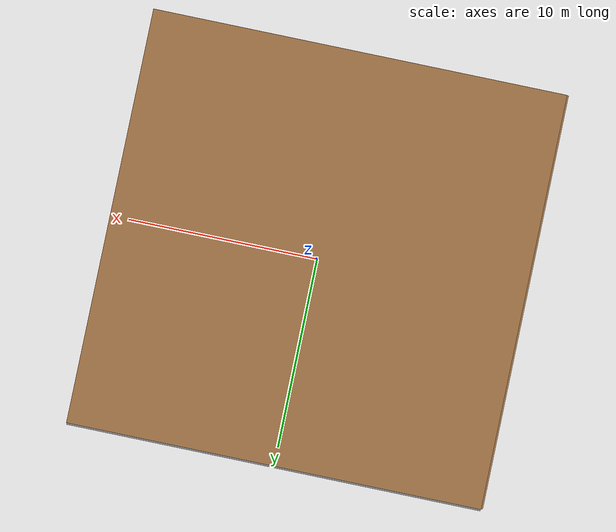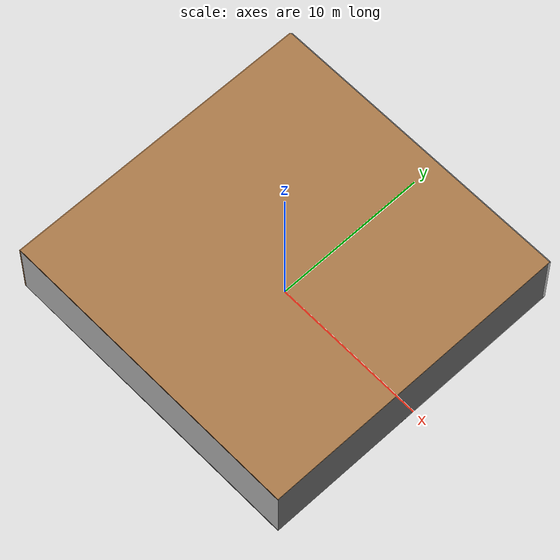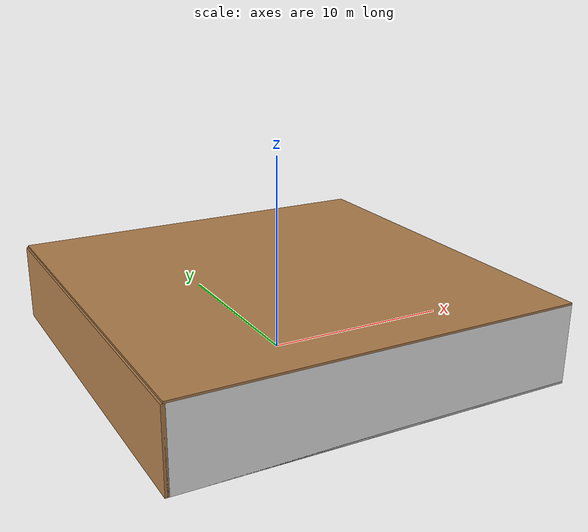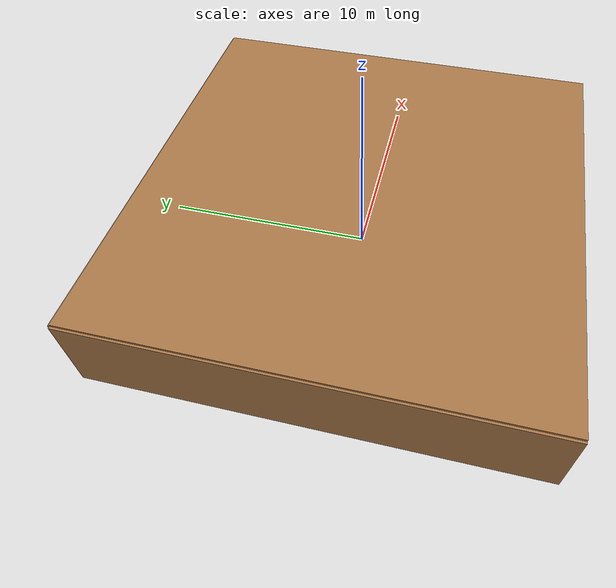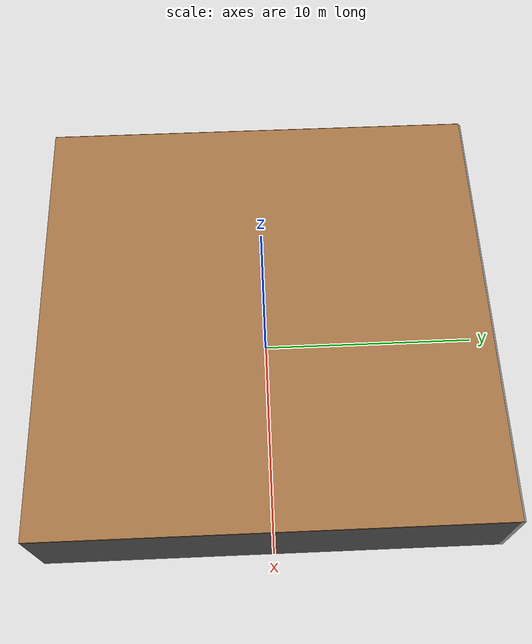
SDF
<sdf version="1.4">
 <world name="default">
  <physics type="ode">
   <max_step_size>0.001</max_step_size>
   <real_time_factor>1</real_time_factor>
   <real_time_update_rate>1000</real_time_update_rate>
   <gravity>0 0 -9.8</gravity>
  </physics>
  <scene><ambient>0.4 0.4 0.4 1</ambient><background>0.7 0.7 0.7 1</background><shadows>1</shadows></scene>
  <model name="Surrounding">
   <static>1</static>
   <link name="Ceiling">
    <collision name="Ceiling_Collision"><geometry><box><size>20 20 0.1</size></box></geometry></collision>
    <visual name="Ceiling_Visual">
     <geometry><box><size>20 20 0.1</size></box></geometry>
     <material>
      <script><uri>file://media/materials/scripts/gazebo.material</uri><name>Gazebo/Wood</name></script>
     </material>
    </visual>
    <pose>0 0 4.05 0 0 0</pose>
   </link>
   <link name="Wall_South">
    <collision name="Wall_South_Collision">
     <geometry><box><size>20 0 4</size></box></geometry>
     <pose>0 0 2 0 -0 0</pose>
    </collision>
    <visual name="Wall_South_Visual">
     <pose>0 0 2 0 -0 0</pose>
     <geometry><box><size>20 0 4</size></box></geometry>
     <material>
      <script><uri>file://media/materials/scripts/gazebo.material</uri><name>Gazebo/WhiteGlow</name></script>
     </material>
    </visual>
    <velocity_decay><linear>0</linear><angular>0</angular></velocity_decay>
    <pose>0 -10 0 0 -0 0</pose>
   </link>
   <link name="Wall_East">
    <collision name="Wall_21_Collision">
     <geometry><box><size>20 0 4</size></box></geometry>
     <pose>0 0 2 0 -0 0</pose>
    </collision>
    <visual name="Wall_21_Visual">
     <pose>0 0 2 0 -0 0</pose>
     <geometry><box><size>20 0 4</size></box></geometry>
     <material>
      <script><uri>file://media/materials/scripts/gazebo.material</uri><name>Gazebo/Road</name></script>
     </material>
    </visual>
    <velocity_decay><linear>0</linear><angular>0</angular></velocity_decay>
    <pose>10 0 0 0 -0 1.5708</pose>
   </link>
   <link name="Wall_North">
    <collision name="Wall_22_Collision">
     <geometry><box><size>20 0.2 4</size></box></geometry>
     <pose>0 0 2 0 -0 0</pose>
    </collision>
    <visual name="Wall_22_Visual">
     <pose>0 0 2 0 -0 0</pose>
     <geometry><box><size>20 0.2 4</size></box></geometry>
     <material>
      <script><uri>file://media/materials/scripts/gazebo.material</uri><name>Gazebo/GreyGradientSky</name></script>
     </material>
    </visual>
    <velocity_decay><linear>0</linear><angular>0</angular></velocity_decay>
    <pose>0 10 0 0 -0 0</pose>
   </link>
   <link name="Wall_West">
    <collision name="Wall_23_Collision">
     <geometry><box><size>20 0.2 4</size></box></geometry>
     <pose>0 0 2 0 -0 0</pose>
    </collision>
    <visual name="Wall_23_Visual">
     <pose>0 0 2 0 -0 0</pose>
     <geometry><box><size>20 0.2 4</size></box></geometry>
     <material>
      <script><uri>file://media/materials/scripts/gazebo.material</uri><name>Gazebo/WoodFloor</name></script>
     </material>
    </visual>
    <velocity_decay><linear>0</linear><angular>0</angular></velocity_decay>
    <pose>-10 0 0 0 0 -1.5708</pose>
   </link>
   <link name="Ground_link">
    <collision name="collision">
     <pose>0 0 .05 0 -0 0</pose>
     <geometry><box><size>20 20 0.1</size></box></geometry>
    </collision>
    <visual name="visual">
     <pose>0 0 .05 0 -0 0</pose>
     <geometry><box><size>20 20 0.1</size></box></geometry>
     <material>
      <script><uri>file://media/materials/scripts/gazebo.material</uri><name>Gazebo/CloudySky</name></script>
     </material>
    </visual>
   </link>
   <static>1</static>
  </model>
  <spherical_coordinates>
   <surface_model>EARTH_WGS84</surface_model>
   <latitude_deg>0</latitude_deg>
   <longitude_deg>0</longitude_deg>
   <elevation>0</elevation>
   <heading_deg>0</heading_deg>
  </spherical_coordinates>
  <light name="lightball_0" type="diffuse">
   <diffuse>0.8 0.8 0.8 1</diffuse>
   <specular>0.2 0.2 0.2 1</specular>
   <attenuation>
    <range>100</range>
    <constant>0.7</constant>
    <linear>0.01</linear>
    <quadratic>0.001</quadratic>
   </attenuation>
   <direction>-0.5 0.1 -0.9</direction>
   <pose>6.18475338841 -3.91751386645 2.00486987378 0 0 0</pose>
  </light>
  <light name="lightball_1" type="diffuse">
   <diffuse>0.8 0.8 0.8 1</diffuse>
   <specular>0.2 0.2 0.2 1</specular>
   <attenuation>
    <range>100</range>
    <constant>0.7</constant>
    <linear>0.01</linear>
    <quadratic>0.001</quadratic>
   </attenuation>
   <direction>-0.5 0.1 -0.9</direction>
   <pose>9.74293768336 -7.11529704398 3.01867605024 0 0 0</pose>
  </light>
  <light name="lightball_2" type="diffuse">
   <diffuse>0.8 0.8 0.8 1</diffuse>
   <specular>0.2 0.2 0.2 1</specular>
   <attenuation>
    <range>100</range>
    <constant>0.7</constant>
    <linear>0.01</linear>
    <quadratic>0.001</quadratic>
   </attenuation>
   <direction>-0.5 0.1 -0.9</direction>
   <pose>-1.49213516706 6.75155803983 1.83126915315 0 0 0</pose>
  </light>
  <include><uri>model://cabinet</uri><pose>-8.29235973567 -1.98253922385 0 0 0 0.615128215737</pose></include>
  <include>
   <uri>model://textured_shapes</uri>
   <pose>-1.86444484022 -3.75869003762 0 0 0 2.70535100615</pose>
  </include>
  <include>
   <uri>model://robocup_3Dsim_goal</uri>
   <pose>1.74270356557 -4.30986896821 0 0 0 1.52636265482</pose>
  </include>
  <include><uri>model://table</uri><pose>1.05172559551 1.06910313548 0 0 0 0.997908094785</pose></include>
  <include><uri>model://cabinet</uri><pose>1.00078646339 5.13402873105 0 0 0 0.951764189557</pose></include>
  <include><uri>model://cabinet</uri><pose>8.1485242544 -2.29957653296 0 0 0 2.72078861737</pose></include>
  <include>
   <uri>model://robocup_3Dsim_goal</uri>
   <pose>7.67272251296 1.36515625292 0 0 0 2.90987908374</pose>
  </include>
 </world>
</sdf>

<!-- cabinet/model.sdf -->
<sdf version="1.5">
  <model name="cabinet">
    <static>true</static>
    <link name="cabinet_bottom_plate">
      <inertial>
        <pose>0 0 -1 0 0 0</pose>
        <inertia>
          <ixx>2.050000</ixx>
          <ixy>0</ixy>
          <ixz>0</ixz>
          <iyy>2.050000</iyy>
          <iyz>0</iyz>
          <izz>2.050000</izz>
        </inertia>
        <mass>25.000000</mass>
      </inertial>
      <collision name="cabinet_bottom_plate_geom">
        <pose>0 0 0.010000 0 0 0</pose>
        <geometry>
          <box>
            <size>0.450000 0.450000 0.020000</size>
          </box>
        </geometry>
      </collision>
      <visual name="cabinet_bottom_plate_geom_visual">
        <pose>0 0 0.010000 0 0 0</pose>
        <geometry>
          <box>
            <size>0.450000 0.450000 0.020000</size>
          </box>
        </geometry>
        <material>
          <script>
            <uri>model://media/materials/scripts/gazebo.material</uri>
            <name>Gazebo/Wood</name>
          </script>
        </material>
      </visual>
      <collision name="cabinet_bottom_plate_geom_cabinet_back_plate">
        <pose>0.235000 0 0.510000 0 0 0</pose>
        <geometry>
          <box>
            <size>0.020000 0.450000 1.020000</size>
          </box>
        </geometry>
      </collision>
      <visual name="cabinet_bottom_plate_geom_cabinet_back_plate_visual">
        <pose>0.235000 0 0.510000 0 0 0</pose>
        <geometry>
          <box>
            <size>0.020000 0.450000 1.020000</size>
          </box>
        </geometry>
        <material>
          <script>
            <uri>model://media/materials/scripts/gazebo.material</uri>
            <name>Gazebo/Wood</name>
          </script>
        </material>
      </visual>
      <collision name="cabinet_bottom_plate_geom_cabinet_left_plate">
        <pose>0 0.235000 0.510000 0 0 0</pose>
        <geometry>
          <box>
            <size>0.450000 0.020000 1.020000</size>
          </box>
        </geometry>
      </collision>
      <visual name="cabinet_bottom_plate_geom_cabinet_left_plate_visual">
        <pose>0 0.235000 0.510000 0 0 0</pose>
        <geometry>
          <box>
            <size>0.450000 0.020000 1.020000</size>
          </box>
        </geometry>
        <material>
          <script>
            <uri>model://media/materials/scripts/gazebo.material</uri>
            <name>Gazebo/Wood</name>
          </script>
        </material>
      </visual>
      <collision name="cabinet_bottom_plate_geom_cabinet_middle_plate">
        <pose>0 0 0.510000 0 0 0</pose>
        <geometry>
          <box>
            <size>0.450000 0.450000 0.020000</size>
          </box>
        </geometry>
      </collision>
      <visual name="cabinet_bottom_plate_geom_cabinet_middle_plate_visual">
        <pose>0 0 0.510000 0 0 0</pose>
        <geometry>
          <box>
            <size>0.450000 0.450000 0.020000</size>
          </box>
        </geometry>
        <material>
          <script>
            <uri>model://media/materials/scripts/gazebo.material</uri>
            <name>Gazebo/Wood</name>
          </script>
        </material>
      </visual>
      <collision name="cabinet_bottom_plate_geom_cabinet_right_plate">
        <pose>0 -0.235000 0.510000 0 0 0</pose>
        <geometry>
          <box>
            <size>0.450000 0.020000 1.020000</size>
          </box>
        </geometry>
      </collision>
      <visual name="cabinet_bottom_plate_geom_cabinet_right_plate_visual">
        <pose>0 -0.235000 0.510000 0 0 0</pose>
        <geometry>
          <box>
            <size>0.450000 0.020000 1.020000</size>
          </box>
        </geometry>
        <material>
          <script>
            <uri>model://media/materials/scripts/gazebo.material</uri>
            <name>Gazebo/Wood</name>
          </script>
        </material>
      </visual>
      <collision name="cabinet_bottom_plate_geom_cabinet_top_plate">
        <pose>0 0 1.010000 0 0 0</pose>
        <geometry>
          <box>
            <size>0.450000 0.450000 0.020000</size>
          </box>
        </geometry>
      </collision>
      <visual name="cabinet_bottom_plate_geom_cabinet_top_plate_visual">
        <pose>0 0 1.010000 0 0 0</pose>
        <geometry>
          <box>
            <size>0.450000 0.450000 0.020000</size>
          </box>
        </geometry>
        <material>
          <script>
            <uri>model://media/materials/scripts/gazebo.material</uri>
            <name>Gazebo/Wood</name>
          </script>
        </material>
      </visual>
    </link>
  </model>
</sdf>

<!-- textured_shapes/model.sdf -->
<sdf version="1.6">
  <model name="textured_shapes">
    <pose>0 0 0.5 0 0 0</pose>
    <link name="box">
      <pose>0 -1.5 0 0 0 0</pose>
      <collision name="collision">
        <geometry>
          <box>
            <size>1 1 1</size>
          </box>
        </geometry>
      </collision>
      <visual name="visual">
        <geometry>
          <box>
            <size>1 1 1</size>
          </box>
        </geometry>
        <material>
          <script>
            <uri>model://../model_source/models/textured_shapes/materials/scripts</uri>
            <uri>model://../model_source/models/textured_shapes/materials/textures</uri>
            <name>TexturedShape/Squares</name>
          </script>
        </material>
      </visual>
    </link>
    <link name="sphere">
      <collision name="collision">
        <geometry>
          <sphere>
            <radius>0.5</radius>
          </sphere>
        </geometry>
      </collision>
      <visual name="visual">
        <geometry>
          <sphere>
            <radius>0.5</radius>
          </sphere>
        </geometry>
        <material>
          <script>
            <uri>model://../model_source/models/textured_shapes/materials/scripts</uri>
            <uri>model://../model_source/models/textured_shapes/materials/textures</uri>
            <name>TexturedShape/Squares</name>
          </script>
        </material>
      </visual>
    </link>
    <link name="cylinder">
      <pose>0 1.5 0 0 0 0</pose>
      <collision name="collision">
        <geometry>
          <cylinder>
            <radius>0.5</radius>
            <length>1</length>
          </cylinder>
        </geometry>
      </collision>
      <visual name="visual">
        <geometry>
          <cylinder>
            <radius>0.5</radius>
            <length>1</length>
          </cylinder>
        </geometry>
        <material>
          <script>
            <uri>model://../model_source/models/textured_shapes/materials/scripts</uri>
            <uri>model://../model_source/models/textured_shapes/materials/textures</uri>
            <name>TexturedShape/Squares</name>
          </script>
        </material>
      </visual>
    </link>
  </model>
</sdf>

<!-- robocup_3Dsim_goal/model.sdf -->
<sdf version="1.5">
  <model name="robocup_3d_goal">
    <static>true</static>
    <link name="left_post">
      <pose>0 1.05 0.45 0 0 0</pose>
      <collision name="collision">
        <geometry>
          <cylinder>
            <radius>0.05</radius>
            <length>0.9</length>
          </cylinder>
        </geometry>
      </collision>
      <visual name="visual">
        <geometry>
          <cylinder>
            <radius>0.05</radius>
            <length>0.9</length>
          </cylinder>
        </geometry>
        <material>
          <script>
            <uri>file://media/materials/scripts/gazebo.material</uri>
            <name>Gazebo/ZincYellow</name>
          </script>
        </material>
      </visual>
    </link>
    <link name="left_support_horiz_lower">
      <pose>0.30 1.05 0.01 0 0 0</pose>
      <collision name="collision">
        <geometry>
          <box>
            <size>0.50 0.02 0.02</size>
          </box>
        </geometry>
      </collision>
      <visual name="visual">
        <geometry>
          <box>
            <size>0.50 0.02 0.02</size>
          </box>
        </geometry>
        <material>
          <script>
            <uri>file://media/materials/scripts/gazebo.material</uri>
            <name>Gazebo/White</name>
          </script>
        </material>
      </visual>
    </link>
    <link name="left_support_horiz_upper">
      <pose>0.30 1.05 0.79 0 0 0</pose>
      <collision name="collision">
        <geometry>
          <box>
            <size>0.50 0.02 0.02</size>
          </box>
        </geometry>
      </collision>
      <visual name="visual">
        <geometry>
          <box>
            <size>0.50 0.02 0.02</size>
          </box>
        </geometry>
        <material>
          <script>
            <uri>file://media/materials/scripts/gazebo.material</uri>
            <name>Gazebo/White</name>
          </script>
        </material>
      </visual>
    </link>
    <link name="left_support_vertical">
      <pose>0.56 1.05 0.4 0 1.5708 0</pose>
      <collision name="collision">
        <geometry>
          <box>
            <size>0.80 0.02 0.02</size>
          </box>
        </geometry>
      </collision>
      <visual name="visual">
        <geometry>
          <box>
            <size>0.80 0.02 0.02</size>
          </box>
        </geometry>
        <material>
          <script>
            <uri>file://media/materials/scripts/gazebo.material</uri>
            <name>Gazebo/White</name>
          </script>
        </material>
      </visual>
    </link>
    <link name="right_support_horiz_lower">
      <pose>0.30 -1.05 0.01 0 0 0</pose>
      <collision name="collision">
        <geometry>
          <box>
            <size>0.50 0.02 0.02</size>
          </box>
        </geometry>
      </collision>
      <visual name="visual">
        <geometry>
          <box>
            <size>0.50 0.02 0.02</size>
          </box>
        </geometry>
        <material>
          <script>
            <uri>file://media/materials/scripts/gazebo.material</uri>
            <name>Gazebo/White</name>
          </script>
        </material>
      </visual>
    </link>
    <link name="right_support_horiz_upper">
      <pose>0.30 -1.05 0.79 0 0 0</pose>
      <collision name="collision">
        <geometry>
          <box>
            <size>0.50 0.02 0.02</size>
          </box>
        </geometry>
      </collision>
      <visual name="visual">
        <geometry>
          <box>
            <size>0.50 0.02 0.02</size>
          </box>
        </geometry>
        <material>
          <script>
            <uri>file://media/materials/scripts/gazebo.material</uri>
            <name>Gazebo/White</name>
          </script>
        </material>
      </visual>
    </link>
    <link name="right_support_vertical">
      <pose>0.56 -1.05 0.4 0 1.5708 0</pose>
      <collision name="collision">
        <geometry>
          <box>
            <size>0.80 0.02 0.02</size>
          </box>
        </geometry>
      </collision>
      <visual name="visual">
        <geometry>
          <box>
            <size>0.80 0.02 0.02</size>
          </box>
        </geometry>
        <material>
          <script>
            <uri>file://media/materials/scripts/gazebo.material</uri>
            <name>Gazebo/White</name>
          </script>
        </material>
      </visual>
    </link>
    <link name="center_support_horiz_lower">
      <pose>0.56 0 0.01 0 1.5708 0</pose>
      <collision name="collision">
        <geometry>
          <box>
            <size>0.02 2.08 0.02</size>
          </box>
        </geometry>
      </collision>
      <visual name="visual">
        <geometry>
          <box>
            <size>0.02 2.08 0.02</size>
          </box>
        </geometry>
        <material>
          <script>
            <uri>file://media/materials/scripts/gazebo.material</uri>
            <name>Gazebo/White</name>
          </script>
        </material>
      </visual>
    </link>
    <link name="center_support_horiz_upper">
      <pose>0.56 0 0.79 0 1.5708 0</pose>
      <collision name="collision">
        <geometry>
          <box>
            <size>0.02 2.08 0.02</size>
          </box>
        </geometry>
      </collision>
      <visual name="visual">
        <geometry>
          <box>
            <size>0.02 2.08 0.02</size>
          </box>
        </geometry>
        <material>
          <script>
            <uri>file://media/materials/scripts/gazebo.material</uri>
            <name>Gazebo/White</name>
          </script>
        </material>
      </visual>
    </link>
    <link name="right_post">
      <pose>0 -1.05 0.45 0 0 0</pose>
      <collision name="collision">
        <geometry>
          <cylinder>
            <radius>0.05</radius>
            <length>0.9</length>
          </cylinder>
        </geometry>
      </collision>
      <visual name="visual">
        <geometry>
          <cylinder>
            <radius>0.05</radius>
            <length>0.9</length>
          </cylinder>
        </geometry>
        <material>
          <script>
            <uri>file://media/materials/scripts/gazebo.material</uri>
            <name>Gazebo/ZincYellow</name>
          </script>
        </material>
      </visual>
    </link>
    <link name="crossbar">
      <pose>0 0 0.85 1.57 1.57 0</pose>
      <collision name="collision">
        <geometry>
          <cylinder>
            <radius>0.05</radius>
            <length>2.0</length>
          </cylinder>
        </geometry>
      </collision>
      <visual name="visual">
        <geometry>
          <cylinder>
            <radius>0.05</radius>
            <length>2.0</length>
          </cylinder>
        </geometry>
        <material>
          <script>
            <uri>file://media/materials/scripts/gazebo.material</uri>
            <name>Gazebo/ZincYellow</name>
          </script>
        </material>
      </visual>
    </link>
    <link name="center_net">
      <pose>0.56 0 0.40 0 0 0</pose>
      <collision name="collision">
        <geometry>
          <box>
            <size>0.01 2.1 0.80</size>
          </box>
        </geometry>
      </collision>
      <visual name="visual">
        <geometry>
          <box>
            <size>0.01 2.1 0.80</size>
          </box>
        </geometry>
        <material>
          <script>
            <uri>model://../model_source/models/robocup09_spl_field/materials/scripts/</uri>
            <uri>model://../model_source/models/robocup09_spl_field/materials/textures/</uri>
            <name>RoboCup/Net</name>
          </script>
        </material>
      </visual>
    </link>
    <link name="left_net">
      <pose>0.30 1.05 0.40 0 0 0</pose>
      <collision name="collision">
        <geometry>
          <box>
            <size>0.50 0.01 0.76</size>
          </box>
        </geometry>
      </collision>
      <visual name="visual">
        <geometry>
          <box>
            <size>0.50 0.01 0.76</size>
          </box>
        </geometry>
        <material>
          <script>
            <uri>model://../model_source/models/robocup09_spl_field/materials/scripts/</uri>
            <uri>model://../model_source/models/robocup09_spl_field/materials/textures/</uri>
            <name>RoboCup/Net</name>
          </script>
        </material>
      </visual>
    </link>
    <link name="right_net">
      <pose>0.30 -1.05 0.40 0 0 0</pose>
      <collision name="collision">
        <geometry>
          <box>
            <size>0.50 0.01 0.76</size>
          </box>
        </geometry>
      </collision>
      <visual name="visual">
        <geometry>
          <box>
            <size>0.50 0.01 0.76</size>
          </box>
        </geometry>
        <material>
          <script>
            <uri>model://../model_source/models/robocup09_spl_field/materials/scripts/</uri>
            <uri>model://../model_source/models/robocup09_spl_field/materials/textures/</uri>
            <name>RoboCup/Net</name>
          </script>
        </material>
      </visual>
    </link>
  </model>
</sdf>

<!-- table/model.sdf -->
<sdf version="1.5">
  <model name="table">
    <static>true</static>
    <link name="link">
      <collision name="surface">
        <pose>0 0 1.0 0 0 0</pose>
        <geometry>
          <box>
            <size>1.5 0.8 0.03</size>
          </box>
        </geometry>
        <surface>
          <friction>
            <ode>
              <mu>0.6</mu>
              <mu2>0.6</mu2>
            </ode>
          </friction>
        </surface>
      </collision>
      <visual name="visual1">
        <pose>0 0 1.0 0 0 0</pose>
        <geometry>
          <box>
            <size>1.5 0.8 0.03</size>
          </box>
        </geometry>
        <material>
          <script>
            <uri>model://media/materials/scripts/gazebo.material</uri>
            <name>Gazebo/Wood</name>
          </script>
        </material>
      </visual>
      <collision name="front_left_leg">
        <pose>0.68 0.38 0.5 0 0 0</pose>
        <geometry>
          <cylinder>
            <radius>0.02</radius>
            <length>1.0</length>
          </cylinder>
        </geometry>
      </collision>
      <visual name="front_left_leg">
        <pose>0.68 0.38 0.5 0 0 0</pose>
        <geometry>
          <cylinder>
            <radius>0.02</radius>
            <length>1.0</length>
          </cylinder>
        </geometry>
        <material>
          <script>
            <uri>model://media/materials/scripts/gazebo.material</uri>
            <name>Gazebo/Grey</name>
          </script>
        </material>
      </visual>
      <collision name="front_right_leg">
        <pose>0.68 -0.38 0.5 0 0 0</pose>
        <geometry>
          <cylinder>
            <radius>0.02</radius>
            <length>1.0</length>
          </cylinder>
        </geometry>
      </collision>
      <visual name="front_right_leg">
        <pose>0.68 -0.38 0.5 0 0 0</pose>
        <geometry>
          <cylinder>
            <radius>0.02</radius>
            <length>1.0</length>
          </cylinder>
        </geometry>
        <material>
          <script>
            <uri>model://media/materials/scripts/gazebo.material</uri>
            <name>Gazebo/Grey</name>
          </script>
        </material>
      </visual>
      <collision name="back_right_leg">
        <pose>-0.68 -0.38 0.5 0 0 0</pose>
        <geometry>
          <cylinder>
            <radius>0.02</radius>
            <length>1.0</length>
          </cylinder>
        </geometry>
      </collision>
      <visual name="back_right_leg">
        <pose>-0.68 -0.38 0.5 0 0 0</pose>
        <geometry>
          <cylinder>
            <radius>0.02</radius>
            <length>1.0</length>
          </cylinder>
        </geometry>
        <material>
          <script>
            <uri>model://media/materials/scripts/gazebo.material</uri>
            <name>Gazebo/Grey</name>
          </script>
        </material>
      </visual>
      <collision name="back_left_leg">
        <pose>-0.68 0.38 0.5 0 0 0</pose>
        <geometry>
          <cylinder>
            <radius>0.02</radius>
            <length>1.0</length>
          </cylinder>
        </geometry>
      </collision>
      <visual name="back_left_leg">
        <pose>-0.68 0.38 0.5 0 0 0</pose>
        <geometry>
          <cylinder>
            <radius>0.02</radius>
            <length>1.0</length>
          </cylinder>
        </geometry>
        <material>
          <script>
            <uri>model://media/materials/scripts/gazebo.material</uri>
            <name>Gazebo/Grey</name>
          </script>
        </material>
      </visual>
    </link>
  </model>
</sdf>
